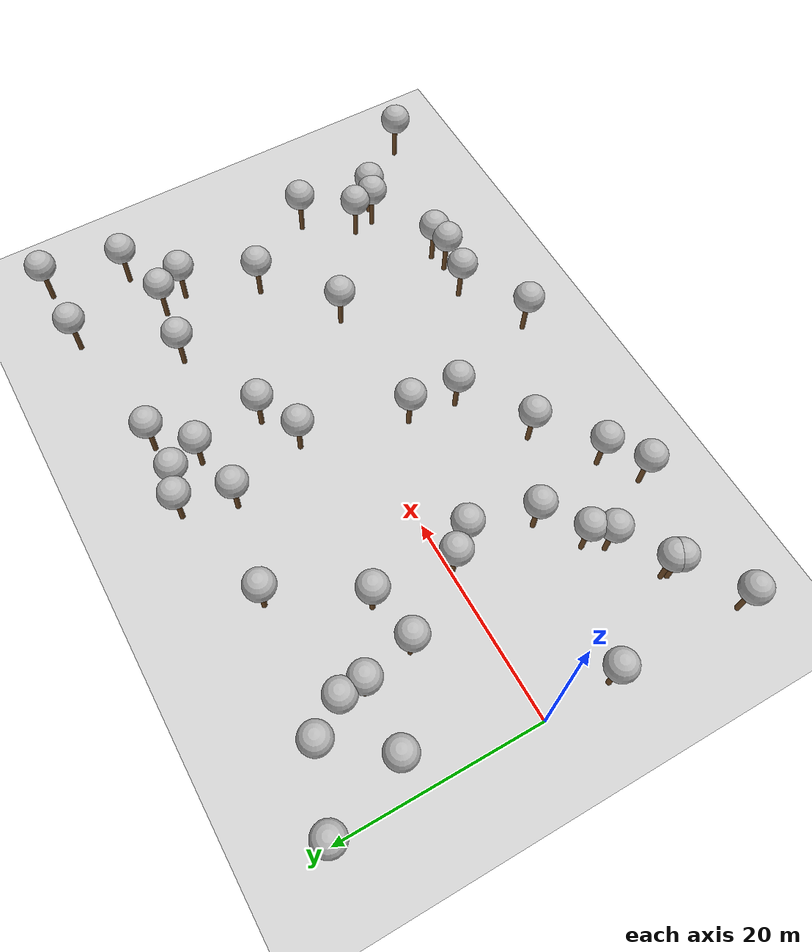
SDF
<sdf version='1.7'>
            <world name='default'>
                <light name='sun' type='directional'>
                <cast_shadows>1</cast_shadows>
                <pose>0 0 10 0 -0 0</pose>
                <diffuse>0.8 0.8 0.8 1</diffuse>
                <specular>0.2 0.2 0.2 1</specular>
                <attenuation>
                    <range>1000</range>
                    <constant>0.9</constant>
                    <linear>0.01</linear>
                    <quadratic>0.001</quadratic>
                </attenuation>
                <direction>-0.5 0.1 -0.9</direction>
                <spot>
                    <inner_angle>0</inner_angle>
                    <outer_angle>0</outer_angle>
                    <falloff>0</falloff>
                </spot>
                </light>
                <model name='ground_plane'>
                <static>1</static>
                <link name='link'>
                    <collision name='collision'>
                    <geometry>
                        <plane>
                        <normal>0 0 1</normal>
                        <size>100 100</size>
                        </plane>
                    </geometry>
                    <surface>
                        <contact>
                        <collide_bitmask>65535</collide_bitmask>
                        <ode/>
                        </contact>
                        <friction>
                        <ode>
                            <mu>100</mu>
                            <mu2>50</mu2>
                        </ode>
                        <torsional>
                            <ode/>
                        </torsional>
                        </friction>
                        <bounce/>
                    </surface>
                    <max_contacts>10</max_contacts>
                    </collision>
                    <visual name='visual'>
                    <cast_shadows>0</cast_shadows>
                    <geometry>
                        <plane>
                        <normal>0 0 1</normal>
                        <size>100 100</size>
                        </plane>
                    </geometry>
                    <material>
                        <script>
                        <uri>file://media/materials/scripts/gazebo.material</uri>
                        <name>Gazebo/Grey</name>
                        </script>
                    </material>
                    </visual>
                    <self_collide>0</self_collide>
                    <enable_wind>0</enable_wind>
                    <kinematic>0</kinematic>
                </link>
                </model>
                <gravity>0 0 -9.8</gravity>
                <magnetic_field>6e-06 2.3e-05 -4.2e-05</magnetic_field>
                <atmosphere type='adiabatic'/>
                <physics type='ode'>
                <max_step_size>0.001</max_step_size>
                <real_time_factor>1</real_time_factor>
                <real_time_update_rate>1000</real_time_update_rate>
                </physics>
                <scene>
                <ambient>0.4 0.4 0.4 1</ambient>
                <background>0.7 0.7 0.7 1</background>
                <shadows>1</shadows>
                </scene>
                <wind/>
                <spherical_coordinates>
                <surface_model>EARTH_WGS84</surface_model>
                <latitude_deg>0</latitude_deg>
                <longitude_deg>0</longitude_deg>
                <elevation>0</elevation>
                <heading_deg>0</heading_deg>
                </spherical_coordinates>

    <model name='tree_simple498'>
      <static>1</static>
      <link name='link'>
        <pose frame=''>0 0 0.1 0 -0 0</pose>
        <collision name='collision_trunk'>
          <pose frame=''>0 0 2 0 -0 0</pose>
          <geometry>
            <cylinder>
              <radius>0.25</radius>
              <length>4</length>
            </cylinder>
          </geometry>
        </collision>
        <collision name='collision_treetop'>
          <pose frame=''>0 0 5.2 0 -0 0</pose>
          <geometry>
            <sphere>
              <radius>1.5</radius>
            </sphere>
          </geometry>
        </collision>
        <visual name='trunk'>
          <pose frame=''>0 0 2 0 -0 0</pose>
          <geometry>
            <cylinder>
              <radius>0.25</radius>
              <length>4</length>
            </cylinder>
          </geometry>
          <material>
            <script>
              <uri>model://tree_simple/scripts</uri>
              <uri>model://tree_simple/materials/textures</uri>
              <name>TreeSimple/Trunk</name>
            </script>
          </material>
        </visual>
        <visual name='treetop'>
          <pose frame=''>0 0 5.2 0 -0 0</pose>
          <geometry>
            <sphere>
              <radius>1.5</radius>
            </sphere>
          </geometry>
          <material>
            <script>
              <uri>model://tree_simple/scripts</uri>
              <uri>model://tree_simple/materials/textures</uri>
              <name>TreeSimple/Treetop</name>
            </script>
          </material>
        </visual>
        <self_collide>0</self_collide>
        <kinematic>0</kinematic>
      </link>
      <pose frame=''>0.0 20.0 0 0 -0 0</pose>
    </model>
        <model name='tree_simple497'>
      <static>1</static>
      <link name='link'>
        <pose frame=''>0 0 0.1 0 -0 0</pose>
        <collision name='collision_trunk'>
          <pose frame=''>0 0 2 0 -0 0</pose>
          <geometry>
            <cylinder>
              <radius>0.25</radius>
              <length>4</length>
            </cylinder>
          </geometry>
        </collision>
        <collision name='collision_treetop'>
          <pose frame=''>0 0 5.2 0 -0 0</pose>
          <geometry>
            <sphere>
              <radius>1.5</radius>
            </sphere>
          </geometry>
        </collision>
        <visual name='trunk'>
          <pose frame=''>0 0 2 0 -0 0</pose>
          <geometry>
            <cylinder>
              <radius>0.25</radius>
              <length>4</length>
            </cylinder>
          </geometry>
          <material>
            <script>
              <uri>model://tree_simple/scripts</uri>
              <uri>model://tree_simple/materials/textures</uri>
              <name>TreeSimple/Trunk</name>
            </script>
          </material>
        </visual>
        <visual name='treetop'>
          <pose frame=''>0 0 5.2 0 -0 0</pose>
          <geometry>
            <sphere>
              <radius>1.5</radius>
            </sphere>
          </geometry>
          <material>
            <script>
              <uri>model://tree_simple/scripts</uri>
              <uri>model://tree_simple/materials/textures</uri>
              <name>TreeSimple/Treetop</name>
            </script>
          </material>
        </visual>
        <self_collide>0</self_collide>
        <kinematic>0</kinematic>
      </link>
      <pose frame=''>0.0 -20.0 0 0 -0 0</pose>
    </model>
        <model name='tree_simple496'>
      <static>1</static>
      <link name='link'>
        <pose frame=''>0 0 0.1 0 -0 0</pose>
        <collision name='collision_trunk'>
          <pose frame=''>0 0 2 0 -0 0</pose>
          <geometry>
            <cylinder>
              <radius>0.25</radius>
              <length>4</length>
            </cylinder>
          </geometry>
        </collision>
        <collision name='collision_treetop'>
          <pose frame=''>0 0 5.2 0 -0 0</pose>
          <geometry>
            <sphere>
              <radius>1.5</radius>
            </sphere>
          </geometry>
        </collision>
        <visual name='trunk'>
          <pose frame=''>0 0 2 0 -0 0</pose>
          <geometry>
            <cylinder>
              <radius>0.25</radius>
              <length>4</length>
            </cylinder>
          </geometry>
          <material>
            <script>
              <uri>model://tree_simple/scripts</uri>
              <uri>model://tree_simple/materials/textures</uri>
              <name>TreeSimple/Trunk</name>
            </script>
          </material>
        </visual>
        <visual name='treetop'>
          <pose frame=''>0 0 5.2 0 -0 0</pose>
          <geometry>
            <sphere>
              <radius>1.5</radius>
            </sphere>
          </geometry>
          <material>
            <script>
              <uri>model://tree_simple/scripts</uri>
              <uri>model://tree_simple/materials/textures</uri>
              <name>TreeSimple/Treetop</name>
            </script>
          </material>
        </visual>
        <self_collide>0</self_collide>
        <kinematic>0</kinematic>
      </link>
      <pose frame=''>60.0 20.0 0 0 -0 0</pose>
    </model>
        <model name='tree_simple495'>
      <static>1</static>
      <link name='link'>
        <pose frame=''>0 0 0.1 0 -0 0</pose>
        <collision name='collision_trunk'>
          <pose frame=''>0 0 2 0 -0 0</pose>
          <geometry>
            <cylinder>
              <radius>0.25</radius>
              <length>4</length>
            </cylinder>
          </geometry>
        </collision>
        <collision name='collision_treetop'>
          <pose frame=''>0 0 5.2 0 -0 0</pose>
          <geometry>
            <sphere>
              <radius>1.5</radius>
            </sphere>
          </geometry>
        </collision>
        <visual name='trunk'>
          <pose frame=''>0 0 2 0 -0 0</pose>
          <geometry>
            <cylinder>
              <radius>0.25</radius>
              <length>4</length>
            </cylinder>
          </geometry>
          <material>
            <script>
              <uri>model://tree_simple/scripts</uri>
              <uri>model://tree_simple/materials/textures</uri>
              <name>TreeSimple/Trunk</name>
            </script>
          </material>
        </visual>
        <visual name='treetop'>
          <pose frame=''>0 0 5.2 0 -0 0</pose>
          <geometry>
            <sphere>
              <radius>1.5</radius>
            </sphere>
          </geometry>
          <material>
            <script>
              <uri>model://tree_simple/scripts</uri>
              <uri>model://tree_simple/materials/textures</uri>
              <name>TreeSimple/Treetop</name>
            </script>
          </material>
        </visual>
        <self_collide>0</self_collide>
        <kinematic>0</kinematic>
      </link>
      <pose frame=''>60.0 -20.0 0 0 -0 0</pose>
    </model>
    <model name="tree_7_0"><pose frame="">35.36 14.67 0 0 -0 0</pose><static>1</static><link name="link"><pose frame="">0 0 0.1 0 -0 0</pose><collision name="collision_trunk"><pose frame="">0 0 2 0 -0 0</pose><geometry><cylinder><radius>0.25</radius><length>4</length></cylinder></geometry></collision><collision name="collision_treetop"><pose frame="">0 0 5.2 0 -0 0</pose><geometry><sphere><radius>1.5</radius></sphere></geometry></collision><visual name="trunk"><pose frame="">0 0 2 0 -0 0</pose><geometry><cylinder><radius>0.25</radius><length>4</length></cylinder></geometry><material><script><uri>model://tree_simple/scripts</uri><uri>model://tree_simple/materials/textures</uri><name>TreeSimple/Trunk</name></script></material></visual><visual name="treetop"><pose frame="">0 0 5.2 0 -0 0</pose><geometry><sphere><radius>1.5</radius></sphere></geometry><material><script><uri>model://tree_simple/scripts</uri><uri>model://tree_simple/materials/textures</uri><name>TreeSimple/Treetop</name></script></material></visual><self_collide>0</self_collide><kinematic>0</kinematic></link></model><model name="tree_7_1"><pose frame="">52.4 10.72 0 0 -0 0</pose><static>1</static><link name="link"><pose frame="">0 0 0.1 0 -0 0</pose><collision name="collision_trunk"><pose frame="">0 0 2 0 -0 0</pose><geometry><cylinder><radius>0.25</radius><length>4</length></cylinder></geometry></collision><collision name="collision_treetop"><pose frame="">0 0 5.2 0 -0 0</pose><geometry><sphere><radius>1.5</radius></sphere></geometry></collision><visual name="trunk"><pose frame="">0 0 2 0 -0 0</pose><geometry><cylinder><radius>0.25</radius><length>4</length></cylinder></geometry><material><script><uri>model://tree_simple/scripts</uri><uri>model://tree_simple/materials/textures</uri><name>TreeSimple/Trunk</name></script></material></visual><visual name="treetop"><pose frame="">0 0 5.2 0 -0 0</pose><geometry><sphere><radius>1.5</radius></sphere></geometry><material><script><uri>model://tree_simple/scripts</uri><uri>model://tree_simple/materials/textures</uri><name>TreeSimple/Treetop</name></script></material></visual><self_collide>0</self_collide><kinematic>0</kinematic></link></model><model name="tree_7_2"><pose frame="">52.32 -10.92 0 0 -0 0</pose><static>1</static><link name="link"><pose frame="">0 0 0.1 0 -0 0</pose><collision name="collision_trunk"><pose frame="">0 0 2 0 -0 0</pose><geometry><cylinder><radius>0.25</radius><length>4</length></cylinder></geometry></collision><collision name="collision_treetop"><pose frame="">0 0 5.2 0 -0 0</pose><geometry><sphere><radius>1.5</radius></sphere></geometry></collision><visual name="trunk"><pose frame="">0 0 2 0 -0 0</pose><geometry><cylinder><radius>0.25</radius><length>4</length></cylinder></geometry><material><script><uri>model://tree_simple/scripts</uri><uri>model://tree_simple/materials/textures</uri><name>TreeSimple/Trunk</name></script></material></visual><visual name="treetop"><pose frame="">0 0 5.2 0 -0 0</pose><geometry><sphere><radius>1.5</radius></sphere></geometry><material><script><uri>model://tree_simple/scripts</uri><uri>model://tree_simple/materials/textures</uri><name>TreeSimple/Treetop</name></script></material></visual><self_collide>0</self_collide><kinematic>0</kinematic></link></model><model name="tree_7_3"><pose frame="">43.77 -16.66 0 0 -0 0</pose><static>1</static><link name="link"><pose frame="">0 0 0.1 0 -0 0</pose><collision name="collision_trunk"><pose frame="">0 0 2 0 -0 0</pose><geometry><cylinder><radius>0.25</radius><length>4</length></cylinder></geometry></collision><collision name="collision_treetop"><pose frame="">0 0 5.2 0 -0 0</pose><geometry><sphere><radius>1.5</radius></sphere></geometry></collision><visual name="trunk"><pose frame="">0 0 2 0 -0 0</pose><geometry><cylinder><radius>0.25</radius><length>4</length></cylinder></geometry><material><script><uri>model://tree_simple/scripts</uri><uri>model://tree_simple/materials/textures</uri><name>TreeSimple/Trunk</name></script></material></visual><visual name="treetop"><pose frame="">0 0 5.2 0 -0 0</pose><geometry><sphere><radius>1.5</radius></sphere></geometry><material><script><uri>model://tree_simple/scripts</uri><uri>model://tree_simple/materials/textures</uri><name>TreeSimple/Treetop</name></script></material></visual><self_collide>0</self_collide><kinematic>0</kinematic></link></model><model name="tree_7_4"><pose frame="">6.91 17.5 0 0 -0 0</pose><static>1</static><link name="link"><pose frame="">0 0 0.1 0 -0 0</pose><collision name="collision_trunk"><pose frame="">0 0 2 0 -0 0</pose><geometry><cylinder><radius>0.25</radius><length>4</length></cylinder></geometry></collision><collision name="collision_treetop"><pose frame="">0 0 5.2 0 -0 0</pose><geometry><sphere><radius>1.5</radius></sphere></geometry></collision><visual name="trunk"><pose frame="">0 0 2 0 -0 0</pose><geometry><cylinder><radius>0.25</radius><length>4</length></cylinder></geometry><material><script><uri>model://tree_simple/scripts</uri><uri>model://tree_simple/materials/textures</uri><name>TreeSimple/Trunk</name></script></material></visual><visual name="treetop"><pose frame="">0 0 5.2 0 -0 0</pose><geometry><sphere><radius>1.5</radius></sphere></geometry><material><script><uri>model://tree_simple/scripts</uri><uri>model://tree_simple/materials/textures</uri><name>TreeSimple/Treetop</name></script></material></visual><self_collide>0</self_collide><kinematic>0</kinematic></link></model><model name="tree_7_5"><pose frame="">5.33 -16.44 0 0 -0 0</pose><static>1</static><link name="link"><pose frame="">0 0 0.1 0 -0 0</pose><collision name="collision_trunk"><pose frame="">0 0 2 0 -0 0</pose><geometry><cylinder><radius>0.25</radius><length>4</length></cylinder></geometry></collision><collision name="collision_treetop"><pose frame="">0 0 5.2 0 -0 0</pose><geometry><sphere><radius>1.5</radius></sphere></geometry></collision><visual name="trunk"><pose frame="">0 0 2 0 -0 0</pose><geometry><cylinder><radius>0.25</radius><length>4</length></cylinder></geometry><material><script><uri>model://tree_simple/scripts</uri><uri>model://tree_simple/materials/textures</uri><name>TreeSimple/Trunk</name></script></material></visual><visual name="treetop"><pose frame="">0 0 5.2 0 -0 0</pose><geometry><sphere><radius>1.5</radius></sphere></geometry><material><script><uri>model://tree_simple/scripts</uri><uri>model://tree_simple/materials/textures</uri><name>TreeSimple/Treetop</name></script></material></visual><self_collide>0</self_collide><kinematic>0</kinematic></link></model><model name="tree_7_6"><pose frame="">0.11 -6.48 0 0 -0 0</pose><static>1</static><link name="link"><pose frame="">0 0 0.1 0 -0 0</pose><collision name="collision_trunk"><pose frame="">0 0 2 0 -0 0</pose><geometry><cylinder><radius>0.25</radius><length>4</length></cylinder></geometry></collision><collision name="collision_treetop"><pose frame="">0 0 5.2 0 -0 0</pose><geometry><sphere><radius>1.5</radius></sphere></geometry></collision><visual name="trunk"><pose frame="">0 0 2 0 -0 0</pose><geometry><cylinder><radius>0.25</radius><length>4</length></cylinder></geometry><material><script><uri>model://tree_simple/scripts</uri><uri>model://tree_simple/materials/textures</uri><name>TreeSimple/Trunk</name></script></material></visual><visual name="treetop"><pose frame="">0 0 5.2 0 -0 0</pose><geometry><sphere><radius>1.5</radius></sphere></geometry><material><script><uri>model://tree_simple/scripts</uri><uri>model://tree_simple/materials/textures</uri><name>TreeSimple/Treetop</name></script></material></visual><self_collide>0</self_collide><kinematic>0</kinematic></link></model><model name="tree_7_7"><pose frame="">2.76 12.24 0 0 -0 0</pose><static>1</static><link name="link"><pose frame="">0 0 0.1 0 -0 0</pose><collision name="collision_trunk"><pose frame="">0 0 2 0 -0 0</pose><geometry><cylinder><radius>0.25</radius><length>4</length></cylinder></geometry></collision><collision name="collision_treetop"><pose frame="">0 0 5.2 0 -0 0</pose><geometry><sphere><radius>1.5</radius></sphere></geometry></collision><visual name="trunk"><pose frame="">0 0 2 0 -0 0</pose><geometry><cylinder><radius>0.25</radius><length>4</length></cylinder></geometry><material><script><uri>model://tree_simple/scripts</uri><uri>model://tree_simple/materials/textures</uri><name>TreeSimple/Trunk</name></script></material></visual><visual name="treetop"><pose frame="">0 0 5.2 0 -0 0</pose><geometry><sphere><radius>1.5</radius></sphere></geometry><material><script><uri>model://tree_simple/scripts</uri><uri>model://tree_simple/materials/textures</uri><name>TreeSimple/Treetop</name></script></material></visual><self_collide>0</self_collide><kinematic>0</kinematic></link></model><model name="tree_7_8"><pose frame="">33.66 -19.72 0 0 -0 0</pose><static>1</static><link name="link"><pose frame="">0 0 0.1 0 -0 0</pose><collision name="collision_trunk"><pose frame="">0 0 2 0 -0 0</pose><geometry><cylinder><radius>0.25</radius><length>4</length></cylinder></geometry></collision><collision name="collision_treetop"><pose frame="">0 0 5.2 0 -0 0</pose><geometry><sphere><radius>1.5</radius></sphere></geometry></collision><visual name="trunk"><pose frame="">0 0 2 0 -0 0</pose><geometry><cylinder><radius>0.25</radius><length>4</length></cylinder></geometry><material><script><uri>model://tree_simple/scripts</uri><uri>model://tree_simple/materials/textures</uri><name>TreeSimple/Trunk</name></script></material></visual><visual name="treetop"><pose frame="">0 0 5.2 0 -0 0</pose><geometry><sphere><radius>1.5</radius></sphere></geometry><material><script><uri>model://tree_simple/scripts</uri><uri>model://tree_simple/materials/textures</uri><name>TreeSimple/Treetop</name></script></material></visual><self_collide>0</self_collide><kinematic>0</kinematic></link></model><model name="tree_7_9"><pose frame="">54.3 -13.62 0 0 -0 0</pose><static>1</static><link name="link"><pose frame="">0 0 0.1 0 -0 0</pose><collision name="collision_trunk"><pose frame="">0 0 2 0 -0 0</pose><geometry><cylinder><radius>0.25</radius><length>4</length></cylinder></geometry></collision><collision name="collision_treetop"><pose frame="">0 0 5.2 0 -0 0</pose><geometry><sphere><radius>1.5</radius></sphere></geometry></collision><visual name="trunk"><pose frame="">0 0 2 0 -0 0</pose><geometry><cylinder><radius>0.25</radius><length>4</length></cylinder></geometry><material><script><uri>model://tree_simple/scripts</uri><uri>model://tree_simple/materials/textures</uri><name>TreeSimple/Trunk</name></script></material></visual><visual name="treetop"><pose frame="">0 0 5.2 0 -0 0</pose><geometry><sphere><radius>1.5</radius></sphere></geometry><material><script><uri>model://tree_simple/scripts</uri><uri>model://tree_simple/materials/textures</uri><name>TreeSimple/Treetop</name></script></material></visual><self_collide>0</self_collide><kinematic>0</kinematic></link></model><model name="tree_7_10"><pose frame="">29.84 -4.34 0 0 -0 0</pose><static>1</static><link name="link"><pose frame="">0 0 0.1 0 -0 0</pose><collision name="collision_trunk"><pose frame="">0 0 2 0 -0 0</pose><geometry><cylinder><radius>0.25</radius><length>4</length></cylinder></geometry></collision><collision name="collision_treetop"><pose frame="">0 0 5.2 0 -0 0</pose><geometry><sphere><radius>1.5</radius></sphere></geometry></collision><visual name="trunk"><pose frame="">0 0 2 0 -0 0</pose><geometry><cylinder><radius>0.25</radius><length>4</length></cylinder></geometry><material><script><uri>model://tree_simple/scripts</uri><uri>model://tree_simple/materials/textures</uri><name>TreeSimple/Trunk</name></script></material></visual><visual name="treetop"><pose frame="">0 0 5.2 0 -0 0</pose><geometry><sphere><radius>1.5</radius></sphere></geometry><material><script><uri>model://tree_simple/scripts</uri><uri>model://tree_simple/materials/textures</uri><name>TreeSimple/Treetop</name></script></material></visual><self_collide>0</self_collide><kinematic>0</kinematic></link></model><model name="tree_7_11"><pose frame="">38.9 17.88 0 0 -0 0</pose><static>1</static><link name="link"><pose frame="">0 0 0.1 0 -0 0</pose><collision name="collision_trunk"><pose frame="">0 0 2 0 -0 0</pose><geometry><cylinder><radius>0.25</radius><length>4</length></cylinder></geometry></collision><collision name="collision_treetop"><pose frame="">0 0 5.2 0 -0 0</pose><geometry><sphere><radius>1.5</radius></sphere></geometry></collision><visual name="trunk"><pose frame="">0 0 2 0 -0 0</pose><geometry><cylinder><radius>0.25</radius><length>4</length></cylinder></geometry><material><script><uri>model://tree_simple/scripts</uri><uri>model://tree_simple/materials/textures</uri><name>TreeSimple/Trunk</name></script></material></visual><visual name="treetop"><pose frame="">0 0 5.2 0 -0 0</pose><geometry><sphere><radius>1.5</radius></sphere></geometry><material><script><uri>model://tree_simple/scripts</uri><uri>model://tree_simple/materials/textures</uri><name>TreeSimple/Treetop</name></script></material></visual><self_collide>0</self_collide><kinematic>0</kinematic></link></model><model name="tree_7_12"><pose frame="">14.95 -0.18 0 0 -0 0</pose><static>1</static><link name="link"><pose frame="">0 0 0.1 0 -0 0</pose><collision name="collision_trunk"><pose frame="">0 0 2 0 -0 0</pose><geometry><cylinder><radius>0.25</radius><length>4</length></cylinder></geometry></collision><collision name="collision_treetop"><pose frame="">0 0 5.2 0 -0 0</pose><geometry><sphere><radius>1.5</radius></sphere></geometry></collision><visual name="trunk"><pose frame="">0 0 2 0 -0 0</pose><geometry><cylinder><radius>0.25</radius><length>4</length></cylinder></geometry><material><script><uri>model://tree_simple/scripts</uri><uri>model://tree_simple/materials/textures</uri><name>TreeSimple/Trunk</name></script></material></visual><visual name="treetop"><pose frame="">0 0 5.2 0 -0 0</pose><geometry><sphere><radius>1.5</radius></sphere></geometry><material><script><uri>model://tree_simple/scripts</uri><uri>model://tree_simple/materials/textures</uri><name>TreeSimple/Treetop</name></script></material></visual><self_collide>0</self_collide><kinematic>0</kinematic></link></model><model name="tree_7_13"><pose frame="">5.58 -15.92 0 0 -0 0</pose><static>1</static><link name="link"><pose frame="">0 0 0.1 0 -0 0</pose><collision name="collision_trunk"><pose frame="">0 0 2 0 -0 0</pose><geometry><cylinder><radius>0.25</radius><length>4</length></cylinder></geometry></collision><collision name="collision_treetop"><pose frame="">0 0 5.2 0 -0 0</pose><geometry><sphere><radius>1.5</radius></sphere></geometry></collision><visual name="trunk"><pose frame="">0 0 2 0 -0 0</pose><geometry><cylinder><radius>0.25</radius><length>4</length></cylinder></geometry><material><script><uri>model://tree_simple/scripts</uri><uri>model://tree_simple/materials/textures</uri><name>TreeSimple/Trunk</name></script></material></visual><visual name="treetop"><pose frame="">0 0 5.2 0 -0 0</pose><geometry><sphere><radius>1.5</radius></sphere></geometry><material><script><uri>model://tree_simple/scripts</uri><uri>model://tree_simple/materials/textures</uri><name>TreeSimple/Treetop</name></script></material></visual><self_collide>0</self_collide><kinematic>0</kinematic></link></model><model name="tree_7_14"><pose frame="">15.46 7.65 0 0 -0 0</pose><static>1</static><link name="link"><pose frame="">0 0 0.1 0 -0 0</pose><collision name="collision_trunk"><pose frame="">0 0 2 0 -0 0</pose><geometry><cylinder><radius>0.25</radius><length>4</length></cylinder></geometry></collision><collision name="collision_treetop"><pose frame="">0 0 5.2 0 -0 0</pose><geometry><sphere><radius>1.5</radius></sphere></geometry></collision><visual name="trunk"><pose frame="">0 0 2 0 -0 0</pose><geometry><cylinder><radius>0.25</radius><length>4</length></cylinder></geometry><material><script><uri>model://tree_simple/scripts</uri><uri>model://tree_simple/materials/textures</uri><name>TreeSimple/Trunk</name></script></material></visual><visual name="treetop"><pose frame="">0 0 5.2 0 -0 0</pose><geometry><sphere><radius>1.5</radius></sphere></geometry><material><script><uri>model://tree_simple/scripts</uri><uri>model://tree_simple/materials/textures</uri><name>TreeSimple/Treetop</name></script></material></visual><self_collide>0</self_collide><kinematic>0</kinematic></link></model><model name="tree_7_15"><pose frame="">14.13 -19.77 0 0 -0 0</pose><static>1</static><link name="link"><pose frame="">0 0 0.1 0 -0 0</pose><collision name="collision_trunk"><pose frame="">0 0 2 0 -0 0</pose><geometry><cylinder><radius>0.25</radius><length>4</length></cylinder></geometry></collision><collision name="collision_treetop"><pose frame="">0 0 5.2 0 -0 0</pose><geometry><sphere><radius>1.5</radius></sphere></geometry></collision><visual name="trunk"><pose frame="">0 0 2 0 -0 0</pose><geometry><cylinder><radius>0.25</radius><length>4</length></cylinder></geometry><material><script><uri>model://tree_simple/scripts</uri><uri>model://tree_simple/materials/textures</uri><name>TreeSimple/Trunk</name></script></material></visual><visual name="treetop"><pose frame="">0 0 5.2 0 -0 0</pose><geometry><sphere><radius>1.5</radius></sphere></geometry><material><script><uri>model://tree_simple/scripts</uri><uri>model://tree_simple/materials/textures</uri><name>TreeSimple/Treetop</name></script></material></visual><self_collide>0</self_collide><kinematic>0</kinematic></link></model><model name="tree_7_16"><pose frame="">40.2 -16.24 0 0 -0 0</pose><static>1</static><link name="link"><pose frame="">0 0 0.1 0 -0 0</pose><collision name="collision_trunk"><pose frame="">0 0 2 0 -0 0</pose><geometry><cylinder><radius>0.25</radius><length>4</length></cylinder></geometry></collision><collision name="collision_treetop"><pose frame="">0 0 5.2 0 -0 0</pose><geometry><sphere><radius>1.5</radius></sphere></geometry></collision><visual name="trunk"><pose frame="">0 0 2 0 -0 0</pose><geometry><cylinder><radius>0.25</radius><length>4</length></cylinder></geometry><material><script><uri>model://tree_simple/scripts</uri><uri>model://tree_simple/materials/textures</uri><name>TreeSimple/Trunk</name></script></material></visual><visual name="treetop"><pose frame="">0 0 5.2 0 -0 0</pose><geometry><sphere><radius>1.5</radius></sphere></geometry><material><script><uri>model://tree_simple/scripts</uri><uri>model://tree_simple/materials/textures</uri><name>TreeSimple/Treetop</name></script></material></visual><self_collide>0</self_collide><kinematic>0</kinematic></link></model><model name="tree_7_17"><pose frame="">10.15 -13.16 0 0 -0 0</pose><static>1</static><link name="link"><pose frame="">0 0 0.1 0 -0 0</pose><collision name="collision_trunk"><pose frame="">0 0 2 0 -0 0</pose><geometry><cylinder><radius>0.25</radius><length>4</length></cylinder></geometry></collision><collision name="collision_treetop"><pose frame="">0 0 5.2 0 -0 0</pose><geometry><sphere><radius>1.5</radius></sphere></geometry></collision><visual name="trunk"><pose frame="">0 0 2 0 -0 0</pose><geometry><cylinder><radius>0.25</radius><length>4</length></cylinder></geometry><material><script><uri>model://tree_simple/scripts</uri><uri>model://tree_simple/materials/textures</uri><name>TreeSimple/Trunk</name></script></material></visual><visual name="treetop"><pose frame="">0 0 5.2 0 -0 0</pose><geometry><sphere><radius>1.5</radius></sphere></geometry><material><script><uri>model://tree_simple/scripts</uri><uri>model://tree_simple/materials/textures</uri><name>TreeSimple/Treetop</name></script></material></visual><self_collide>0</self_collide><kinematic>0</kinematic></link></model><model name="tree_7_18"><pose frame="">33.93 17.63 0 0 -0 0</pose><static>1</static><link name="link"><pose frame="">0 0 0.1 0 -0 0</pose><collision name="collision_trunk"><pose frame="">0 0 2 0 -0 0</pose><geometry><cylinder><radius>0.25</radius><length>4</length></cylinder></geometry></collision><collision name="collision_treetop"><pose frame="">0 0 5.2 0 -0 0</pose><geometry><sphere><radius>1.5</radius></sphere></geometry></collision><visual name="trunk"><pose frame="">0 0 2 0 -0 0</pose><geometry><cylinder><radius>0.25</radius><length>4</length></cylinder></geometry><material><script><uri>model://tree_simple/scripts</uri><uri>model://tree_simple/materials/textures</uri><name>TreeSimple/Trunk</name></script></material></visual><visual name="treetop"><pose frame="">0 0 5.2 0 -0 0</pose><geometry><sphere><radius>1.5</radius></sphere></geometry><material><script><uri>model://tree_simple/scripts</uri><uri>model://tree_simple/materials/textures</uri><name>TreeSimple/Treetop</name></script></material></visual><self_collide>0</self_collide><kinematic>0</kinematic></link></model><model name="tree_7_19"><pose frame="">29.36 -9.19 0 0 -0 0</pose><static>1</static><link name="link"><pose frame="">0 0 0.1 0 -0 0</pose><collision name="collision_trunk"><pose frame="">0 0 2 0 -0 0</pose><geometry><cylinder><radius>0.25</radius><length>4</length></cylinder></geometry></collision><collision name="collision_treetop"><pose frame="">0 0 5.2 0 -0 0</pose><geometry><sphere><radius>1.5</radius></sphere></geometry></collision><visual name="trunk"><pose frame="">0 0 2 0 -0 0</pose><geometry><cylinder><radius>0.25</radius><length>4</length></cylinder></geometry><material><script><uri>model://tree_simple/scripts</uri><uri>model://tree_simple/materials/textures</uri><name>TreeSimple/Trunk</name></script></material></visual><visual name="treetop"><pose frame="">0 0 5.2 0 -0 0</pose><geometry><sphere><radius>1.5</radius></sphere></geometry><material><script><uri>model://tree_simple/scripts</uri><uri>model://tree_simple/materials/textures</uri><name>TreeSimple/Treetop</name></script></material></visual><self_collide>0</self_collide><kinematic>0</kinematic></link></model><model name="tree_7_20"><pose frame="">52.67 -13.05 0 0 -0 0</pose><static>1</static><link name="link"><pose frame="">0 0 0.1 0 -0 0</pose><collision name="collision_trunk"><pose frame="">0 0 2 0 -0 0</pose><geometry><cylinder><radius>0.25</radius><length>4</length></cylinder></geometry></collision><collision name="collision_treetop"><pose frame="">0 0 5.2 0 -0 0</pose><geometry><sphere><radius>1.5</radius></sphere></geometry></collision><visual name="trunk"><pose frame="">0 0 2 0 -0 0</pose><geometry><cylinder><radius>0.25</radius><length>4</length></cylinder></geometry><material><script><uri>model://tree_simple/scripts</uri><uri>model://tree_simple/materials/textures</uri><name>TreeSimple/Trunk</name></script></material></visual><visual name="treetop"><pose frame="">0 0 5.2 0 -0 0</pose><geometry><sphere><radius>1.5</radius></sphere></geometry><material><script><uri>model://tree_simple/scripts</uri><uri>model://tree_simple/materials/textures</uri><name>TreeSimple/Treetop</name></script></material></visual><self_collide>0</self_collide><kinematic>0</kinematic></link></model>
    <model name="tree_1_21">
  <pose frame="">20.18 15.76 0 0 -0 0</pose>
  <static>1</static>
  <link name="link">
    <pose frame="">0 0 0.1 0 -0 0</pose>
    <collision name="collision_trunk"><pose frame="">0 0 2 0 -0 0</pose><geometry><cylinder><radius>0.25</radius><length>4</length></cylinder></geometry></collision>
    <collision name="collision_treetop"><pose frame="">0 0 5.2 0 -0 0</pose><geometry><sphere><radius>1.5</radius></sphere></geometry></collision>
    <visual name="trunk"><pose frame="">0 0 2 0 -0 0</pose><geometry><cylinder><radius>0.25</radius><length>4</length></cylinder></geometry><material><script><uri>model://tree_simple/scripts</uri><uri>model://tree_simple/materials/textures</uri><name>TreeSimple/Trunk</name></script></material></visual>
    <visual name="treetop"><pose frame="">0 0 5.2 0 -0 0</pose><geometry><sphere><radius>1.5</radius></sphere></geometry><material><script><uri>model://tree_simple/scripts</uri><uri>model://tree_simple/materials/textures</uri><name>TreeSimple/Treetop</name></script></material></visual>
    <self_collide>0</self_collide><kinematic>0</kinematic>
  </link>
</model>
<model name="tree_1_22">
  <pose frame="">55.64 -6.28 0 0 -0 0</pose>
  <static>1</static>
  <link name="link">
    <pose frame="">0 0 0.1 0 -0 0</pose>
    <collision name="collision_trunk"><pose frame="">0 0 2 0 -0 0</pose><geometry><cylinder><radius>0.25</radius><length>4</length></cylinder></geometry></collision>
    <collision name="collision_treetop"><pose frame="">0 0 5.2 0 -0 0</pose><geometry><sphere><radius>1.5</radius></sphere></geometry></collision>
    <visual name="trunk"><pose frame="">0 0 2 0 -0 0</pose><geometry><cylinder><radius>0.25</radius><length>4</length></cylinder></geometry><material><script><uri>model://tree_simple/scripts</uri><uri>model://tree_simple/materials/textures</uri><name>TreeSimple/Trunk</name></script></material></visual>
    <visual name="treetop"><pose frame="">0 0 5.2 0 -0 0</pose><geometry><sphere><radius>1.5</radius></sphere></geometry><material><script><uri>model://tree_simple/scripts</uri><uri>model://tree_simple/materials/textures</uri><name>TreeSimple/Treetop</name></script></material></visual>
    <self_collide>0</self_collide><kinematic>0</kinematic>
  </link>
</model>
<model name="tree_1_23">
  <pose frame="">11.29 -11.39 0 0 -0 0</pose>
  <static>1</static>
  <link name="link">
    <pose frame="">0 0 0.1 0 -0 0</pose>
    <collision name="collision_trunk"><pose frame="">0 0 2 0 -0 0</pose><geometry><cylinder><radius>0.25</radius><length>4</length></cylinder></geometry></collision>
    <collision name="collision_treetop"><pose frame="">0 0 5.2 0 -0 0</pose><geometry><sphere><radius>1.5</radius></sphere></geometry></collision>
    <visual name="trunk"><pose frame="">0 0 2 0 -0 0</pose><geometry><cylinder><radius>0.25</radius><length>4</length></cylinder></geometry><material><script><uri>model://tree_simple/scripts</uri><uri>model://tree_simple/materials/textures</uri><name>TreeSimple/Trunk</name></script></material></visual>
    <visual name="treetop"><pose frame="">0 0 5.2 0 -0 0</pose><geometry><sphere><radius>1.5</radius></sphere></geometry><material><script><uri>model://tree_simple/scripts</uri><uri>model://tree_simple/materials/textures</uri><name>TreeSimple/Treetop</name></script></material></visual>
    <self_collide>0</self_collide><kinematic>0</kinematic>
  </link>
</model>
<model name="tree_1_24">
  <pose frame="">46.37 11.54 0 0 -0 0</pose>
  <static>1</static>
  <link name="link">
    <pose frame="">0 0 0.1 0 -0 0</pose>
    <collision name="collision_trunk"><pose frame="">0 0 2 0 -0 0</pose><geometry><cylinder><radius>0.25</radius><length>4</length></cylinder></geometry></collision>
    <collision name="collision_treetop"><pose frame="">0 0 5.2 0 -0 0</pose><geometry><sphere><radius>1.5</radius></sphere></geometry></collision>
    <visual name="trunk"><pose frame="">0 0 2 0 -0 0</pose><geometry><cylinder><radius>0.25</radius><length>4</length></cylinder></geometry><material><script><uri>model://tree_simple/scripts</uri><uri>model://tree_simple/materials/textures</uri><name>TreeSimple/Trunk</name></script></material></visual>
    <visual name="treetop"><pose frame="">0 0 5.2 0 -0 0</pose><geometry><sphere><radius>1.5</radius></sphere></geometry><material><script><uri>model://tree_simple/scripts</uri><uri>model://tree_simple/materials/textures</uri><name>TreeSimple/Treetop</name></script></material></visual>
    <self_collide>0</self_collide><kinematic>0</kinematic>
  </link>
</model>
<model name="tree_1_25">
  <pose frame="">32.45 5.89 0 0 -0 0</pose>
  <static>1</static>
  <link name="link">
    <pose frame="">0 0 0.1 0 -0 0</pose>
    <collision name="collision_trunk"><pose frame="">0 0 2 0 -0 0</pose><geometry><cylinder><radius>0.25</radius><length>4</length></cylinder></geometry></collision>
    <collision name="collision_treetop"><pose frame="">0 0 5.2 0 -0 0</pose><geometry><sphere><radius>1.5</radius></sphere></geometry></collision>
    <visual name="trunk"><pose frame="">0 0 2 0 -0 0</pose><geometry><cylinder><radius>0.25</radius><length>4</length></cylinder></geometry><material><script><uri>model://tree_simple/scripts</uri><uri>model://tree_simple/materials/textures</uri><name>TreeSimple/Trunk</name></script></material></visual>
    <visual name="treetop"><pose frame="">0 0 5.2 0 -0 0</pose><geometry><sphere><radius>1.5</radius></sphere></geometry><material><script><uri>model://tree_simple/scripts</uri><uri>model://tree_simple/materials/textures</uri><name>TreeSimple/Treetop</name></script></material></visual>
    <self_collide>0</self_collide><kinematic>0</kinematic>
  </link>
</model>
<model name="tree_1_26">
  <pose frame="">17.53 -17.45 0 0 -0 0</pose>
  <static>1</static>
  <link name="link">
    <pose frame="">0 0 0.1 0 -0 0</pose>
    <collision name="collision_trunk"><pose frame="">0 0 2 0 -0 0</pose><geometry><cylinder><radius>0.25</radius><length>4</length></cylinder></geometry></collision>
    <collision name="collision_treetop"><pose frame="">0 0 5.2 0 -0 0</pose><geometry><sphere><radius>1.5</radius></sphere></geometry></collision>
    <visual name="trunk"><pose frame="">0 0 2 0 -0 0</pose><geometry><cylinder><radius>0.25</radius><length>4</length></cylinder></geometry><material><script><uri>model://tree_simple/scripts</uri><uri>model://tree_simple/materials/textures</uri><name>TreeSimple/Trunk</name></script></material></visual>
    <visual name="treetop"><pose frame="">0 0 5.2 0 -0 0</pose><geometry><sphere><radius>1.5</radius></sphere></geometry><material><script><uri>model://tree_simple/scripts</uri><uri>model://tree_simple/materials/textures</uri><name>TreeSimple/Treetop</name></script></material></visual>
    <self_collide>0</self_collide><kinematic>0</kinematic>
  </link>
</model>
<model name="tree_1_27">
  <pose frame="">52.83 19.81 0 0 -0 0</pose>
  <static>1</static>
  <link name="link">
    <pose frame="">0 0 0.1 0 -0 0</pose>
    <collision name="collision_trunk"><pose frame="">0 0 2 0 -0 0</pose><geometry><cylinder><radius>0.25</radius><length>4</length></cylinder></geometry></collision>
    <collision name="collision_treetop"><pose frame="">0 0 5.2 0 -0 0</pose><geometry><sphere><radius>1.5</radius></sphere></geometry></collision>
    <visual name="trunk"><pose frame="">0 0 2 0 -0 0</pose><geometry><cylinder><radius>0.25</radius><length>4</length></cylinder></geometry><material><script><uri>model://tree_simple/scripts</uri><uri>model://tree_simple/materials/textures</uri><name>TreeSimple/Trunk</name></script></material></visual>
    <visual name="treetop"><pose frame="">0 0 5.2 0 -0 0</pose><geometry><sphere><radius>1.5</radius></sphere></geometry><material><script><uri>model://tree_simple/scripts</uri><uri>model://tree_simple/materials/textures</uri><name>TreeSimple/Treetop</name></script></material></visual>
    <self_collide>0</self_collide><kinematic>0</kinematic>
  </link>
</model>
<model name="tree_1_28">
  <pose frame="">8.97 14.23 0 0 -0 0</pose>
  <static>1</static>
  <link name="link">
    <pose frame="">0 0 0.1 0 -0 0</pose>
    <collision name="collision_trunk"><pose frame="">0 0 2 0 -0 0</pose><geometry><cylinder><radius>0.25</radius><length>4</length></cylinder></geometry></collision>
    <collision name="collision_treetop"><pose frame="">0 0 5.2 0 -0 0</pose><geometry><sphere><radius>1.5</radius></sphere></geometry></collision>
    <visual name="trunk"><pose frame="">0 0 2 0 -0 0</pose><geometry><cylinder><radius>0.25</radius><length>4</length></cylinder></geometry><material><script><uri>model://tree_simple/scripts</uri><uri>model://tree_simple/materials/textures</uri><name>TreeSimple/Trunk</name></script></material></visual>
    <visual name="treetop"><pose frame="">0 0 5.2 0 -0 0</pose><geometry><sphere><radius>1.5</radius></sphere></geometry><material><script><uri>model://tree_simple/scripts</uri><uri>model://tree_simple/materials/textures</uri><name>TreeSimple/Treetop</name></script></material></visual>
    <self_collide>0</self_collide><kinematic>0</kinematic>
  </link>
</model>
<model name="tree_1_29">
  <pose frame="">43.12 -4.18 0 0 -0 0</pose>
  <static>1</static>
  <link name="link">
    <pose frame="">0 0 0.1 0 -0 0</pose>
    <collision name="collision_trunk"><pose frame="">0 0 2 0 -0 0</pose><geometry><cylinder><radius>0.25</radius><length>4</length></cylinder></geometry></collision>
    <collision name="collision_treetop"><pose frame="">0 0 5.2 0 -0 0</pose><geometry><sphere><radius>1.5</radius></sphere></geometry></collision>
    <visual name="trunk"><pose frame="">0 0 2 0 -0 0</pose><geometry><cylinder><radius>0.25</radius><length>4</length></cylinder></geometry><material><script><uri>model://tree_simple/scripts</uri><uri>model://tree_simple/materials/textures</uri><name>TreeSimple/Trunk</name></script></material></visual>
    <visual name="treetop"><pose frame="">0 0 5.2 0 -0 0</pose><geometry><sphere><radius>1.5</radius></sphere></geometry><material><script><uri>model://tree_simple/scripts</uri><uri>model://tree_simple/materials/textures</uri><name>TreeSimple/Treetop</name></script></material></visual>
    <self_collide>0</self_collide><kinematic>0</kinematic>
  </link>
</model>
<model name="tree_1_30">
  <pose frame="">29.78 13.67 0 0 -0 0</pose>
  <static>1</static>
  <link name="link">
    <pose frame="">0 0 0.1 0 -0 0</pose>
    <collision name="collision_trunk"><pose frame="">0 0 2 0 -0 0</pose><geometry><cylinder><radius>0.25</radius><length>4</length></cylinder></geometry></collision>
    <collision name="collision_treetop"><pose frame="">0 0 5.2 0 -0 0</pose><geometry><sphere><radius>1.5</radius></sphere></geometry></collision>
    <visual name="trunk"><pose frame="">0 0 2 0 -0 0</pose><geometry><cylinder><radius>0.25</radius><length>4</length></cylinder></geometry><material><script><uri>model://tree_simple/scripts</uri><uri>model://tree_simple/materials/textures</uri><name>TreeSimple/Trunk</name></script></material></visual>
    <visual name="treetop"><pose frame="">0 0 5.2 0 -0 0</pose><geometry><sphere><radius>1.5</radius></sphere></geometry><material><script><uri>model://tree_simple/scripts</uri><uri>model://tree_simple/materials/textures</uri><name>TreeSimple/Treetop</name></script></material></visual>
    <self_collide>0</self_collide><kinematic>0</kinematic>
  </link>
</model>
<model name="tree_1_31">
  <pose frame="">15.14 -8.76 0 0 -0 0</pose>
  <static>1</static>
  <link name="link">
    <pose frame="">0 0 0.1 0 -0 0</pose>
    <collision name="collision_trunk"><pose frame="">0 0 2 0 -0 0</pose><geometry><cylinder><radius>0.25</radius><length>4</length></cylinder></geometry></collision>
    <collision name="collision_treetop"><pose frame="">0 0 5.2 0 -0 0</pose><geometry><sphere><radius>1.5</radius></sphere></geometry></collision>
    <visual name="trunk"><pose frame="">0 0 2 0 -0 0</pose><geometry><cylinder><radius>0.25</radius><length>4</length></cylinder></geometry><material><script><uri>model://tree_simple/scripts</uri><uri>model://tree_simple/materials/textures</uri><name>TreeSimple/Trunk</name></script></material></visual>
    <visual name="treetop"><pose frame="">0 0 5.2 0 -0 0</pose><geometry><sphere><radius>1.5</radius></sphere></geometry><material><script><uri>model://tree_simple/scripts</uri><uri>model://tree_simple/materials/textures</uri><name>TreeSimple/Treetop</name></script></material></visual>
    <self_collide>0</self_collide><kinematic>0</kinematic>
  </link>
</model>
<model name="tree_1_32">
  <pose frame="">50.28 1.28 0 0 -0 0</pose>
  <static>1</static>
  <link name="link">
    <pose frame="">0 0 0.1 0 -0 0</pose>
    <collision name="collision_trunk"><pose frame="">0 0 2 0 -0 0</pose><geometry><cylinder><radius>0.25</radius><length>4</length></cylinder></geometry></collision>
    <collision name="collision_treetop"><pose frame="">0 0 5.2 0 -0 0</pose><geometry><sphere><radius>1.5</radius></sphere></geometry></collision>
    <visual name="trunk"><pose frame="">0 0 2 0 -0 0</pose><geometry><cylinder><radius>0.25</radius><length>4</length></cylinder></geometry><material><script><uri>model://tree_simple/scripts</uri><uri>model://tree_simple/materials/textures</uri><name>TreeSimple/Trunk</name></script></material></visual>
    <visual name="treetop"><pose frame="">0 0 5.2 0 -0 0</pose><geometry><sphere><radius>1.5</radius></sphere></geometry><material><script><uri>model://tree_simple/scripts</uri><uri>model://tree_simple/materials/textures</uri><name>TreeSimple/Treetop</name></script></material></visual>
    <self_collide>0</self_collide><kinematic>0</kinematic>
  </link>
</model>
<model name="tree_1_33">
  <pose frame="">36.59 7.92 0 0 -0 0</pose>
  <static>1</static>
  <link name="link">
    <pose frame="">0 0 0.1 0 -0 0</pose>
    <collision name="collision_trunk"><pose frame="">0 0 2 0 -0 0</pose><geometry><cylinder><radius>0.25</radius><length>4</length></cylinder></geometry></collision>
    <collision name="collision_treetop"><pose frame="">0 0 5.2 0 -0 0</pose><geometry><sphere><radius>1.5</radius></sphere></geometry></collision>
    <visual name="trunk"><pose frame="">0 0 2 0 -0 0</pose><geometry><cylinder><radius>0.25</radius><length>4</length></cylinder></geometry><material><script><uri>model://tree_simple/scripts</uri><uri>model://tree_simple/materials/textures</uri><name>TreeSimple/Trunk</name></script></material></visual>
    <visual name="treetop"><pose frame="">0 0 5.2 0 -0 0</pose><geometry><sphere><radius>1.5</radius></sphere></geometry><material><script><uri>model://tree_simple/scripts</uri><uri>model://tree_simple/materials/textures</uri><name>TreeSimple/Treetop</name></script></material></visual>
    <self_collide>0</self_collide><kinematic>0</kinematic>
  </link>
</model>
<model name="tree_1_34">
  <pose frame="">22.86 -13.28 0 0 -0 0</pose>
  <static>1</static>
  <link name="link">
    <pose frame="">0 0 0.1 0 -0 0</pose>
    <collision name="collision_trunk"><pose frame="">0 0 2 0 -0 0</pose><geometry><cylinder><radius>0.25</radius><length>4</length></cylinder></geometry></collision>
    <collision name="collision_treetop"><pose frame="">0 0 5.2 0 -0 0</pose><geometry><sphere><radius>1.5</radius></sphere></geometry></collision>
    <visual name="trunk"><pose frame="">0 0 2 0 -0 0</pose><geometry><cylinder><radius>0.25</radius><length>4</length></cylinder></geometry><material><script><uri>model://tree_simple/scripts</uri><uri>model://tree_simple/materials/textures</uri><name>TreeSimple/Trunk</name></script></material></visual>
    <visual name="treetop"><pose frame="">0 0 5.2 0 -0 0</pose><geometry><sphere><radius>1.5</radius></sphere></geometry><material><script><uri>model://tree_simple/scripts</uri><uri>model://tree_simple/materials/textures</uri><name>TreeSimple/Treetop</name></script></material></visual>
    <self_collide>0</self_collide><kinematic>0</kinematic>
  </link>
</model>
<model name="tree_1_35">
  <pose frame="">58.17 12.35 0 0 -0 0</pose>
  <static>1</static>
  <link name="link">
    <pose frame="">0 0 0.1 0 -0 0</pose>
    <collision name="collision_trunk"><pose frame="">0 0 2 0 -0 0</pose><geometry><cylinder><radius>0.25</radius><length>4</length></cylinder></geometry></collision>
    <collision name="collision_treetop"><pose frame="">0 0 5.2 0 -0 0</pose><geometry><sphere><radius>1.5</radius></sphere></geometry></collision>
    <visual name="trunk"><pose frame="">0 0 2 0 -0 0</pose><geometry><cylinder><radius>0.25</radius><length>4</length></cylinder></geometry><material><script><uri>model://tree_simple/scripts</uri><uri>model://tree_simple/materials/textures</uri><name>TreeSimple/Trunk</name></script></material></visual>
    <visual name="treetop"><pose frame="">0 0 5.2 0 -0 0</pose><geometry><sphere><radius>1.5</radius></sphere></geometry><material><script><uri>model://tree_simple/scripts</uri><uri>model://tree_simple/materials/textures</uri><name>TreeSimple/Treetop</name></script></material></visual>
    <self_collide>0</self_collide><kinematic>0</kinematic>
  </link>
</model>
<model name="tree_1_36">
  <pose frame="">10.42 6.78 0 0 -0 0</pose>
  <static>1</static>
  <link name="link">
    <pose frame="">0 0 0.1 0 -0 0</pose>
    <collision name="collision_trunk"><pose frame="">0 0 2 0 -0 0</pose><geometry><cylinder><radius>0.25</radius><length>4</length></cylinder></geometry></collision>
    <collision name="collision_treetop"><pose frame="">0 0 5.2 0 -0 0</pose><geometry><sphere><radius>1.5</radius></sphere></geometry></collision>
    <visual name="trunk"><pose frame="">0 0 2 0 -0 0</pose><geometry><cylinder><radius>0.25</radius><length>4</length></cylinder></geometry><material><script><uri>model://tree_simple/scripts</uri><uri>model://tree_simple/materials/textures</uri><name>TreeSimple/Trunk</name></script></material></visual>
    <visual name="treetop"><pose frame="">0 0 5.2 0 -0 0</pose><geometry><sphere><radius>1.5</radius></sphere></geometry><material><script><uri>model://tree_simple/scripts</uri><uri>model://tree_simple/materials/textures</uri><name>TreeSimple/Treetop</name></script></material></visual>
    <self_collide>0</self_collide><kinematic>0</kinematic>
  </link>
</model>
<model name="tree_1_37">
  <pose frame="">45.63 -16.27 0 0 -0 0</pose>
  <static>1</static>
  <link name="link">
    <pose frame="">0 0 0.1 0 -0 0</pose>
    <collision name="collision_trunk"><pose frame="">0 0 2 0 -0 0</pose><geometry><cylinder><radius>0.25</radius><length>4</length></cylinder></geometry></collision>
    <collision name="collision_treetop"><pose frame="">0 0 5.2 0 -0 0</pose><geometry><sphere><radius>1.5</radius></sphere></geometry></collision>
    <visual name="trunk"><pose frame="">0 0 2 0 -0 0</pose><geometry><cylinder><radius>0.25</radius><length>4</length></cylinder></geometry><material><script><uri>model://tree_simple/scripts</uri><uri>model://tree_simple/materials/textures</uri><name>TreeSimple/Trunk</name></script></material></visual>
    <visual name="treetop"><pose frame="">0 0 5.2 0 -0 0</pose><geometry><sphere><radius>1.5</radius></sphere></geometry><material><script><uri>model://tree_simple/scripts</uri><uri>model://tree_simple/materials/textures</uri><name>TreeSimple/Treetop</name></script></material></visual>
    <self_collide>0</self_collide><kinematic>0</kinematic>
  </link>
</model>
<model name="tree_1_38">
  <pose frame="">31.29 18.54 0 0 -0 0</pose>
  <static>1</static>
  <link name="link">
    <pose frame="">0 0 0.1 0 -0 0</pose>
    <collision name="collision_trunk"><pose frame="">0 0 2 0 -0 0</pose><geometry><cylinder><radius>0.25</radius><length>4</length></cylinder></geometry></collision>
    <collision name="collision_treetop"><pose frame="">0 0 5.2 0 -0 0</pose><geometry><sphere><radius>1.5</radius></sphere></geometry></collision>
    <visual name="trunk"><pose frame="">0 0 2 0 -0 0</pose><geometry><cylinder><radius>0.25</radius><length>4</length></cylinder></geometry><material><script><uri>model://tree_simple/scripts</uri><uri>model://tree_simple/materials/textures</uri><name>TreeSimple/Trunk</name></script></material></visual>
    <visual name="treetop"><pose frame="">0 0 5.2 0 -0 0</pose><geometry><sphere><radius>1.5</radius></sphere></geometry><material><script><uri>model://tree_simple/scripts</uri><uri>model://tree_simple/materials/textures</uri><name>TreeSimple/Treetop</name></script></material></visual>
    <self_collide>0</self_collide><kinematic>0</kinematic>
  </link>
</model>
<model name="tree_1_39">
  <pose frame="">16.72 -2.37 0 0 -0 0</pose>
  <static>1</static>
  <link name="link">
    <pose frame="">0 0 0.1 0 -0 0</pose>
    <collision name="collision_trunk"><pose frame="">0 0 2 0 -0 0</pose><geometry><cylinder><radius>0.25</radius><length>4</length></cylinder></geometry></collision>
    <collision name="collision_treetop"><pose frame="">0 0 5.2 0 -0 0</pose><geometry><sphere><radius>1.5</radius></sphere></geometry></collision>
    <visual name="trunk"><pose frame="">0 0 2 0 -0 0</pose><geometry><cylinder><radius>0.25</radius><length>4</length></cylinder></geometry><material><script><uri>model://tree_simple/scripts</uri><uri>model://tree_simple/materials/textures</uri><name>TreeSimple/Trunk</name></script></material></visual>
    <visual name="treetop"><pose frame="">0 0 5.2 0 -0 0</pose><geometry><sphere><radius>1.5</radius></sphere></geometry><material><script><uri>model://tree_simple/scripts</uri><uri>model://tree_simple/materials/textures</uri><name>TreeSimple/Treetop</name></script></material></visual>
    <self_collide>0</self_collide><kinematic>0</kinematic>
  </link>
</model>
<model name="tree_1_40">
  <pose frame="">53.47 8.19 0 0 -0 0</pose>
  <static>1</static>
  <link name="link">
    <pose frame="">0 0 0.1 0 -0 0</pose>
    <collision name="collision_trunk"><pose frame="">0 0 2 0 -0 0</pose><geometry><cylinder><radius>0.25</radius><length>4</length></cylinder></geometry></collision>
    <collision name="collision_treetop"><pose frame="">0 0 5.2 0 -0 0</pose><geometry><sphere><radius>1.5</radius></sphere></geometry></collision>
    <visual name="trunk"><pose frame="">0 0 2 0 -0 0</pose><geometry><cylinder><radius>0.25</radius><length>4</length></cylinder></geometry><material><script><uri>model://tree_simple/scripts</uri><uri>model://tree_simple/materials/textures</uri><name>TreeSimple/Trunk</name></script></material></visual>
    <visual name="treetop"><pose frame="">0 0 5.2 0 -0 0</pose><geometry><sphere><radius>1.5</radius></sphere></geometry><material><script><uri>model://tree_simple/scripts</uri><uri>model://tree_simple/materials/textures</uri><name>TreeSimple/Treetop</name></script></material></visual>
    <self_collide>0</self_collide><kinematic>0</kinematic>
  </link>
</model>
<model name="tree_1_41">
  <pose frame="">9.23 11.84 0 0 -0 0</pose>
  <static>1</static>
  <link name="link">
    <pose frame="">0 0 0.1 0 -0 0</pose>
    <collision name="collision_trunk"><pose frame="">0 0 2 0 -0 0</pose><geometry><cylinder><radius>0.25</radius><length>4</length></cylinder></geometry></collision>
    <collision name="collision_treetop"><pose frame="">0 0 5.2 0 -0 0</pose><geometry><sphere><radius>1.5</radius></sphere></geometry></collision>
    <visual name="trunk"><pose frame="">0 0 2 0 -0 0</pose><geometry><cylinder><radius>0.25</radius><length>4</length></cylinder></geometry><material><script><uri>model://tree_simple/scripts</uri><uri>model://tree_simple/materials/textures</uri><name>TreeSimple/Trunk</name></script></material></visual>
    <visual name="treetop"><pose frame="">0 0 5.2 0 -0 0</pose><geometry><sphere><radius>1.5</radius></sphere></geometry><material><script><uri>model://tree_simple/scripts</uri><uri>model://tree_simple/materials/textures</uri><name>TreeSimple/Treetop</name></script></material></visual>
    <self_collide>0</self_collide><kinematic>0</kinematic>
  </link>
</model>
            </world>
            </sdf>
